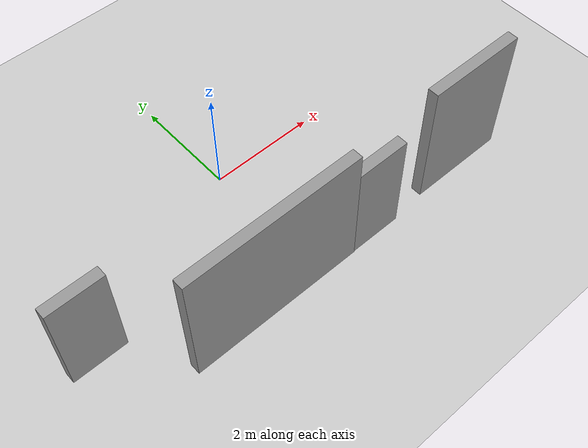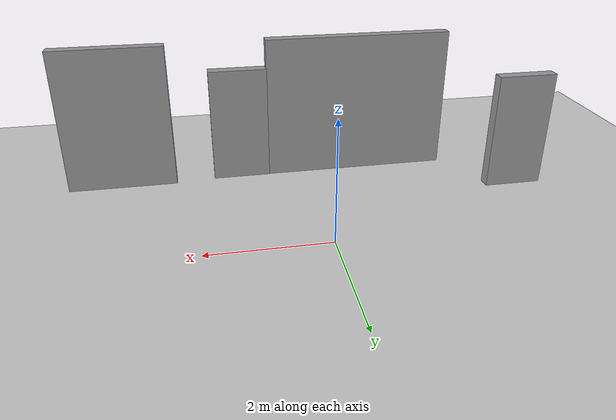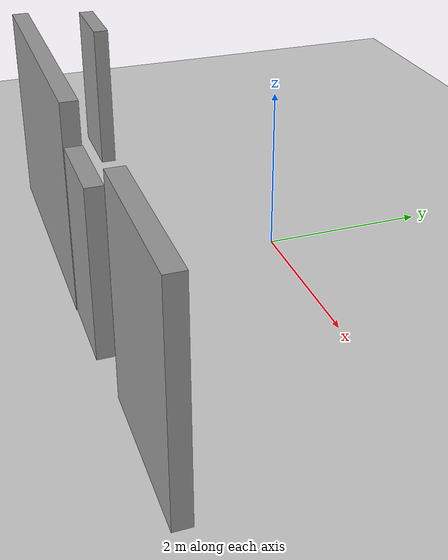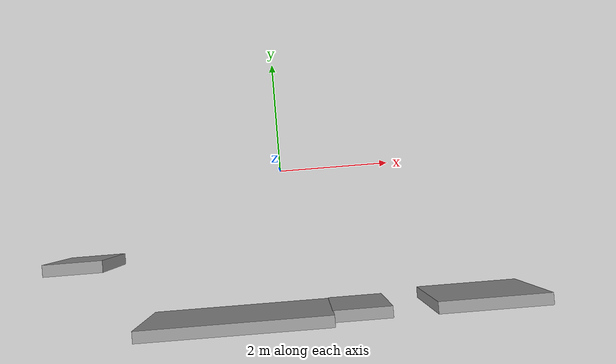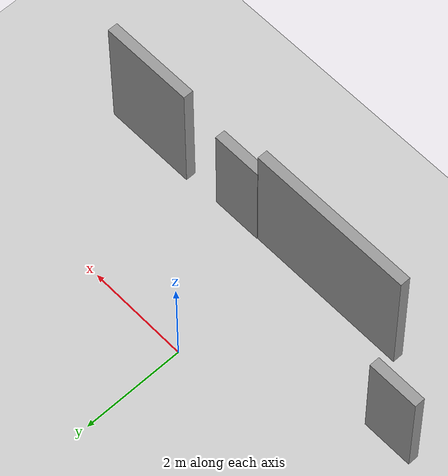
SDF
<sdf version="1.4">
 <world name="default">
  <light name="sun" type="directional">
   <pose>0 0 10 0 -0 0</pose>
   <diffuse>0.8 0.8 0.8 1</diffuse>
   <specular>0.2 0.2 0.2 1</specular>
   <attenuation>
    <range>1000</range>
    <constant>0.9</constant>
    <linear>0.01</linear>
    <quadratic>0.001</quadratic>
   </attenuation>
   <direction>-0.5 0.1 -0.9</direction>
  </light>
  <model name="ground_plane">
   <static>1</static>
   <link name="link">
    <collision name="collision">
     <geometry><plane><normal>0 0 1</normal><size>100 100</size></plane></geometry>
     <surface><friction><ode><mu>100</mu><mu2>50</mu2></ode></friction></surface>
    </collision>
    <visual name="visual">
     <cast_shadows>0</cast_shadows>
     <geometry><plane><normal>0 0 1</normal><size>100 100</size></plane></geometry>
     <material>
      <script><uri>file://media/materials/scripts/gazebo.material</uri><name>Gazebo/Grey</name></script>
     </material>
    </visual>
    <velocity_decay><linear>0</linear><angular>0</angular></velocity_decay>
   </link>
  </model>
  <physics type="ode">
   <max_step_size>0.01</max_step_size>
   <real_time_factor>1</real_time_factor>
   <real_time_update_rate>100</real_time_update_rate>
   <gravity>0 0 -9.8</gravity>
  </physics>
  <scene><ambient>0.4 0.4 0.4 1</ambient><background>0.7 0.7 0.7 1</background><shadows>1</shadows></scene>
  <model name="wall2_door1">
   <link name="Door_0">
    <collision name="Door_0_Collision">
     <geometry><box><size>1 0.2 2</size></box></geometry>
     <pose>0 0 1 0 -0 0</pose>
    </collision>
    <visual name="Door_0_Visual">
     <pose>0 0 1 0 -0 0</pose>
     <geometry><box><size>1 0.2 2</size></box></geometry>
     <material>
      <script><uri>file://media/materials/scripts/gazebo.material</uri><name>Gazebo/Grey</name></script>
     </material>
    </visual>
    <velocity_decay><linear>0</linear><angular>0</angular></velocity_decay>
    <pose>-6.06 -1.4 0 0 -0 0</pose>
   </link>
   <link name="Door_1">
    <collision name="Door_1_Collision">
     <geometry><box><size>1 0.2 2</size></box></geometry>
     <pose>0 0 1 0 -0 0</pose>
    </collision>
    <visual name="Door_1_Visual">
     <pose>0 0 1 0 -0 0</pose>
     <geometry><box><size>1 0.2 2</size></box></geometry>
     <material>
      <script><uri>file://media/materials/scripts/gazebo.material</uri><name>Gazebo/Grey</name></script>
     </material>
    </visual>
    <velocity_decay><linear>0</linear><angular>0</angular></velocity_decay>
    <pose>-1.33 -2.53 0 0 -0 0</pose>
   </link>
   <link name="Wall_0">
    <collision name="Wall_0_Collision">
     <geometry><box><size>3.25 0.2 2.5</size></box></geometry>
     <pose>0 0 1.25 0 -0 0</pose>
    </collision>
    <visual name="Wall_0_Visual">
     <pose>0 0 1.25 0 -0 0</pose>
     <geometry><box><size>3.25 0.2 2.5</size></box></geometry>
     <material>
      <script><uri>file://media/materials/scripts/gazebo.material</uri><name>Gazebo/Grey</name></script>
     </material>
    </visual>
    <velocity_decay><linear>0</linear><angular>0</angular></velocity_decay>
    <pose>-3.445 -2.54 0 0 -0 3.14159</pose>
   </link>
   <link name="Wall_2">
    <collision name="Wall_2_Collision">
     <geometry><box><size>1.85 0.2 2.5</size></box></geometry>
     <pose>0 0 1.25 0 -0 0</pose>
    </collision>
    <visual name="Wall_2_Visual">
     <pose>0 0 1.25 0 -0 0</pose>
     <geometry><box><size>1.85 0.2 2.5</size></box></geometry>
     <material>
      <script><uri>file://media/materials/scripts/gazebo.material</uri><name>Gazebo/Grey</name></script>
     </material>
    </visual>
    <velocity_decay><linear>0</linear><angular>0</angular></velocity_decay>
    <pose>0.765 -2.46 0 0 -0 3.14159</pose>
   </link>
   <static>1</static>
   <pose>2.52577 0 0 0 -0 0</pose>
  </model>
 </world>
</sdf>
